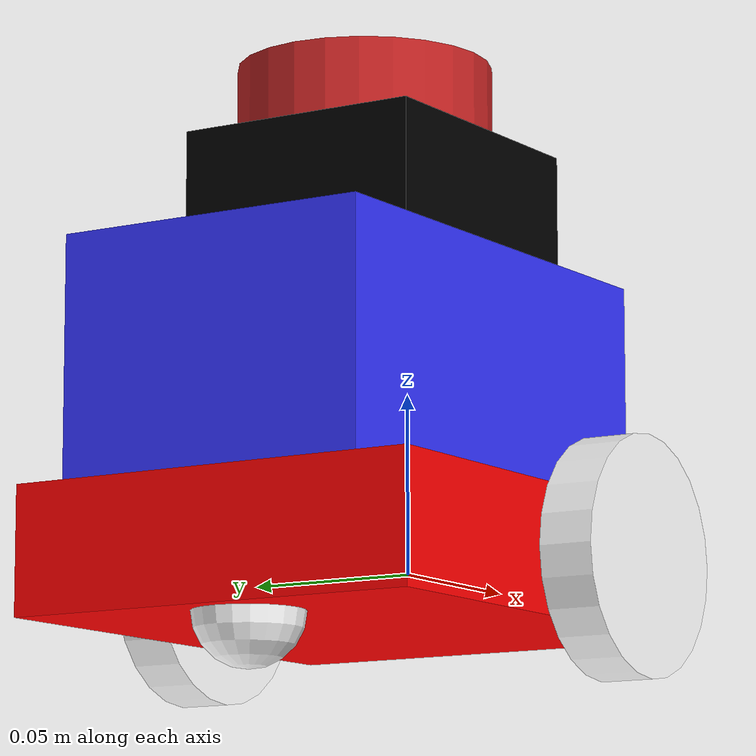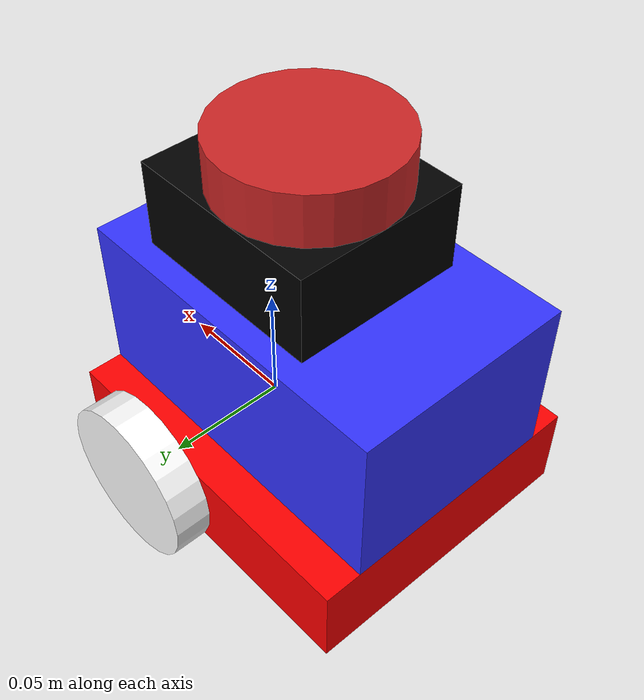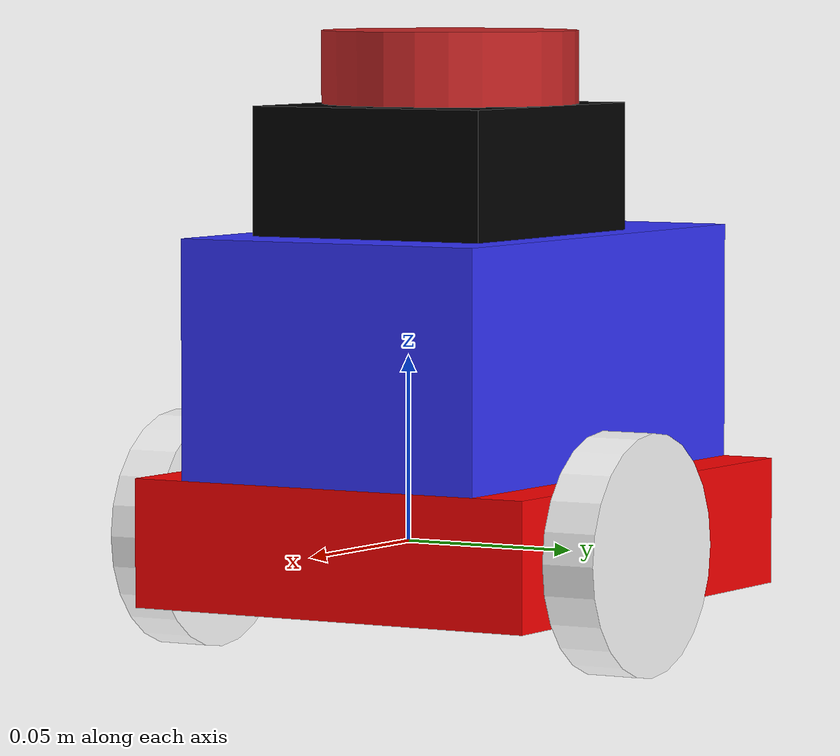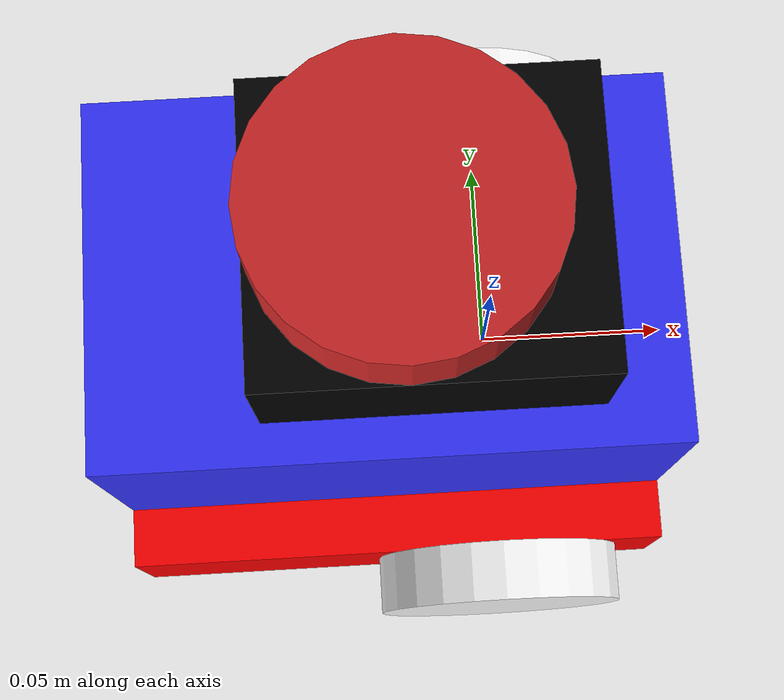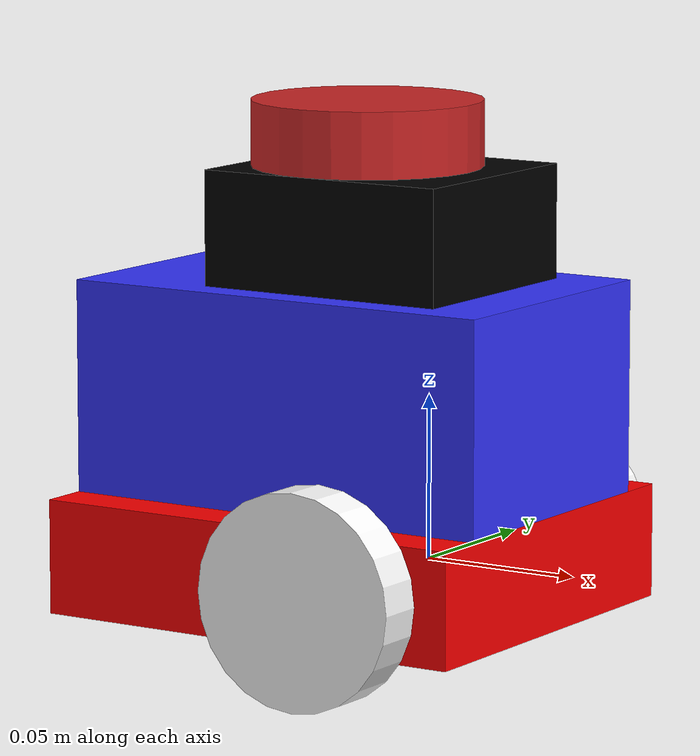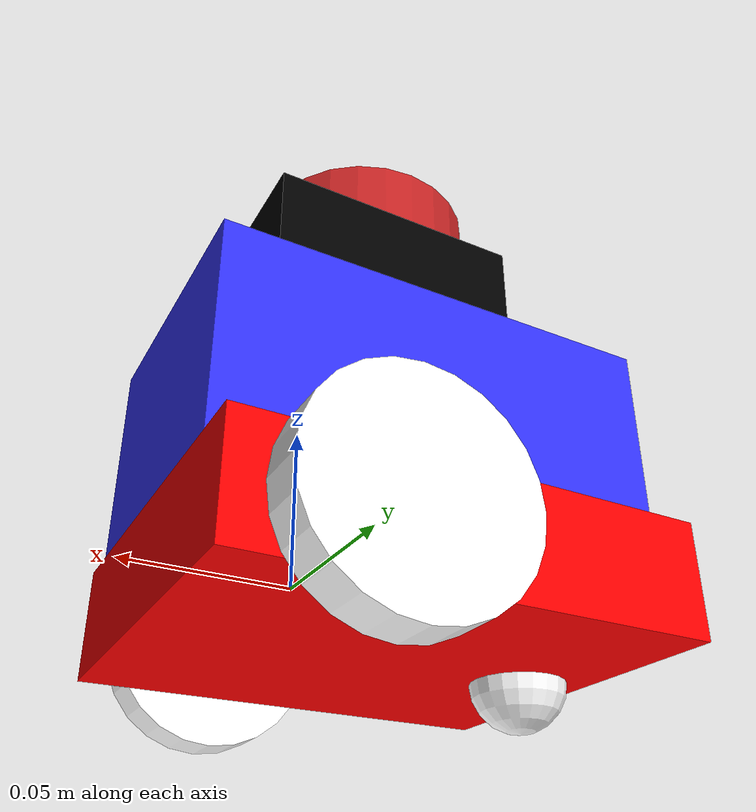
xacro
<?xml version="1.0"?>
<robot xmlns:xacro="http://www.ros.org/wiki/xacro"  name="robot">

    <xacro:include filename="robot_core.xacro"  />
    <xacro:include filename="inertial_macros.xacro" />
    <xacro:include filename="gazebo_control.xacro"/>
    <xacro:include filename="lidar.xacro"/>

</robot>

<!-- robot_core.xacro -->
<robot xmlns:xacro="http://www.ros.org/wiki/xacro">

    <xacro:include filename="inertial_macros.xacro" />

    <material name="white">
        <color rgba="1 1 1 1" />
    </material>

    <material name="orange">
        <color rgba="1 0.3 0.1 1" />
    </material>

    <material name="blue">
        <color rgba="0.2 0.2 1 1" />
    </material>

    <material name="black">
        <color rgba="0 0 0 1" />
    </material>

    <material name="red">
        <color rgba="1 0 0 1" />
    </material>

    <link name="base_link">
    </link>

    <joint name="base_footprint_joint" type="fixed">
        <parent link="base_link"/>
        <child link="base_footprint"/>
        <origin xyz="0 0 0" rpy="0 0 0"/>
    </joint>

    <link name="base_footprint">
    </link>

    <joint name="chassis_joint" type="fixed">
        <parent link="base_link"/>
        <child link="chassis"/>
        <origin xyz="-0.097 0 0"/>
    </joint>

    <link name="chassis">
        <visual>
            <origin xyz="0.07 0 0" />
            <geometry>
                <box size="0.14 0.12 0.035"/>
            </geometry>
            <material name="red"/>
        </visual>
        <collision>
            <origin xyz="0.07 0 0" />
            <geometry>
                <box size="0.14 0.12 0.035"/>
            </geometry>
        </collision>
        <xacro:inertial_box mass="0.25" x="0.14" y="0.12" z="0.035">
            <origin xyz="0.07 0 0" rpy="0 0 0" /> </xacro:inertial_box>

    </link>

    <gazebo reference="chassis">
        <material>Gazebo/Red</material>
    </gazebo>

    <joint name="left_wheel_joint" type="continuous">
        <parent link="base_link"/>
        <child link="left_wheel"/>
        <origin xyz="0 0.0675 0" rpy="${-pi/2} 0 0"/>
        <axis xyz="0 0 1"/>
    </joint>

    <link name="left_wheel">
        <visual>
            <geometry>
                <cylinder radius="0.0325" length="0.015"/>
            </geometry>
            <material name="white"/>
        </visual>
        <collision>
            <geometry>
                <cylinder radius="0.0325" length="0.015"/>
            </geometry>
        </collision>
        <xacro:inertial_cylinder mass="0.1" length="0.015" radius="0.0325"> <origin xyz="0 0 0" rpy="0 0 0" /> </xacro:inertial_cylinder>
    </link>

    <gazebo reference="left_wheel">
        <material>Gazebo/White</material>
    </gazebo>

    <joint name="right_wheel_joint" type="continuous">
        <parent link="base_link"/>
        <child link="right_wheel"/>
        <origin xyz="0 -0.0675 0" rpy="${pi/2} 0 0"/>
        <axis xyz="0 0 -1"/>
    </joint>

    <link name="right_wheel">
        <visual>
            <geometry>
                <cylinder radius="0.0325" length="0.015"/>
            </geometry>
            <material name="white"/>
        </visual>
        <collision>
            <geometry>
                <cylinder radius="0.0325" length="0.015"/>
            </geometry>
        </collision>
        <xacro:inertial_cylinder mass="0.1" length="0.015" radius="0.0325"> <origin xyz="0 0 0" rpy="0 0 0" /> </xacro:inertial_cylinder>
    </link>

    <gazebo reference="right_wheel">
        <material>Gazebo/White</material>
    </gazebo>

    <joint name="caster_wheel_joint" type="fixed">
        <parent link="chassis"/>
        <child link="caster_wheel"/>
        <origin xyz="0.02 0 -0.0175"/>
    </joint>

    <link name="caster_wheel">
        <visual>
            <geometry>
                <sphere radius="0.015"/>
            </geometry>
            <material name="white"/>
        </visual>
        <collision>
            <geometry>
                <sphere radius="0.015"/>
            </geometry>
        </collision>
        <xacro:inertial_sphere mass="0.1" radius="0.015">
            <origin xyz="0 0 0" rpy="0 0 0" /> </xacro:inertial_sphere>
    </link>

    <joint name="chassis_2_joint" type="fixed">
        <parent link="chassis"/>
        <child link="chassis_2"/>
        <origin xyz="0 0 0"/>
    </joint>

    <link name="chassis_2">
        <visual>
            <origin xyz="0.07 0 0.05" />
            <geometry>
                <box size="0.14 0.09 0.065"/>
            </geometry>
            <material name="blue"/>
        </visual>
        <collision>
            <origin xyz="0.07 0 0.05" />
            <geometry>
                <box size="0.14 0.09 0.065"/>
            </geometry>
        </collision>
        <xacro:inertial_box mass="0.2" x="0.14" y="0.09" z="0.065">
            <origin xyz="0.07 0 0.05" rpy="0 0 0" /> </xacro:inertial_box>

    </link>

    <joint name="chassis_3_joint" type="fixed">
        <parent link="chassis_2"/>
        <child link="chassis_3"/>
        <origin xyz="0 0 0"/>
    </joint>

    <link name="chassis_3">
        <visual>
            <origin xyz="0.08 0 0.1" />
            <geometry>
                <box size="0.08 0.07 0.035"/>
            </geometry>
            <material name="black"/>
        </visual>
        <collision>
            <origin xyz="0.08 0 0.1" />
            <geometry>
                <box size="0.08 0.07 0.035"/>
            </geometry>
        </collision>
        <xacro:inertial_box mass="0.2" x="0.08" y="0.07" z="0.035">
            <origin xyz="0.08 0 0.0825" rpy="0 0 0" /> </xacro:inertial_box>

    </link>

    <gazebo reference="chassis_2">
        <material>Gazebo/Blue</material>
    </gazebo>
    <gazebo reference="chassis_3">
        <material>Gazebo/Black</material>
    </gazebo>
    <gazebo reference="caster_wheel">
        <material>Gazebo/White</material>
        <mu1 value="0.001"/>
        <mu2 value="0.001"/>
    </gazebo>

</robot>

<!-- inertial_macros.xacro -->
<robot xmlns:xacro="http://www.ros.org/wiki/xacro" >

    <xacro:macro name="inertial_sphere" params="mass radius *origin">
        <inertial>
            <xacro:insert_block name="origin"/>
            <mass value="${mass}" />
            <inertia ixx="${(2/5) * mass * (radius*radius)}" ixy="0.0" ixz="0.0"
                     iyy="${(2/5) * mass * (radius*radius)}" iyz="0.0"
                     izz="${(2/5) * mass * (radius*radius)}" />
        </inertial>
    </xacro:macro>

    <xacro:macro name="inertial_box" params="mass x y z *origin">
        <inertial>
            <xacro:insert_block name="origin"/>
            <mass value="${mass}" />
            <inertia ixx="${(1/12) * mass * (y*y + z*z)}" ixy="0.0" ixz="0.0"
                     iyy="${(1/12) * mass * (x*x + z*z)}" iyz="0.0"
                     izz="${(1/12) * mass * (x*x + y*y)}" />
        </inertial>
    </xacro:macro>

    <xacro:macro name="inertial_cylinder" params="mass length radius *origin">
        <inertial>
            <xacro:insert_block name="origin"/>
            <mass value="${mass}" />
            <inertia ixx="${(1/12) * mass * (3*radius*radius + length*length)}" ixy="0.0" ixz="0.0"
                     iyy="${(1/12) * mass * (3*radius*radius + length*length)}" iyz="0.0"
                     izz="${(1/2) * mass * (radius*radius)}" />
        </inertial>
    </xacro:macro>

</robot>

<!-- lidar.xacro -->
<robot xmlns:xacro="http://www.ros.org/wiki/xacro" >

    <joint name="laser_joint" type="fixed">
        <parent link="chassis"/>
        <child link="laser_frame"/>
        <origin xyz="0.075 0 0.125" rpy="0 0 0"/>
    </joint>

    <link name="laser_frame">
        <visual>
            <geometry>
                <cylinder radius="0.035" length="0.025"/>
            </geometry>
            <material name="whilte"/>
        </visual>
        <collision>
            <geometry>
                <cylinder radius="0.035" length="0.025"/>
            </geometry>
        </collision>
        <xacro:inertial_cylinder mass="0.1" length="0.025" radius="0.035">
            <origin xyz="0 0 0" rpy="0 0 0"/>
        </xacro:inertial_cylinder>
    </link>

   <gazebo reference="laser_frame">
        <material>Gazebo/Red</material>

        <sensor name="laser" type="ray">
            <pose> 0 0 0 0 0 0 </pose>
            <visualize>false</visualize>
            <update_rate>10</update_rate>
            <ray>
                <scan>
                    <horizontal>
                        <samples>360</samples>
                        <min_angle>-3.14</min_angle>
                        <max_angle>3.14</max_angle>
                    </horizontal>
                </scan>
                <range>
                    <min>0.3</min>
                    <max>12</max>
                </range>
            </ray>
            <plugin name="laser_controller" filename="libgazebo_ros_ray_sensor.so">
                <ros>
                    <argument>~/out:=scan</argument>
                </ros>
                <output_type>sensor_msgs/LaserScan</output_type>
                <frame_name>laser_frame</frame_name>
            </plugin>
        </sensor>
    </gazebo>

    </robot>
